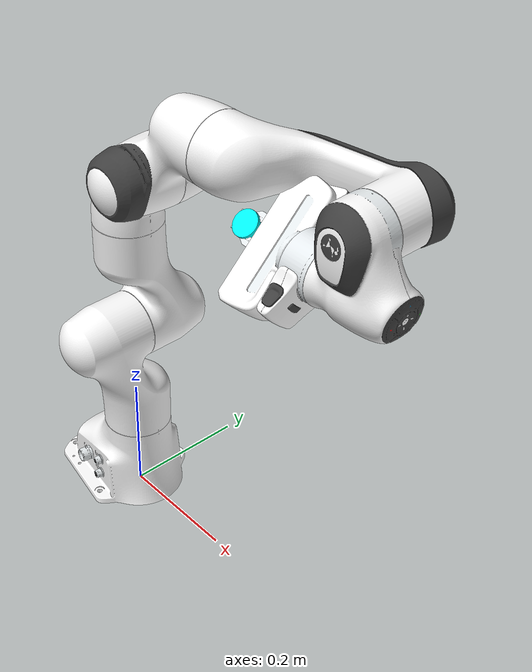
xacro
<?xml version="1.0" encoding="utf-8"?>
<robot xmlns:xacro="http://www.ros.org/wiki/xacro" name="panda">
  <xacro:arg name="robot_name" default="panda"/>

  <!-- Empty link to referr everything to -->
  <link name="world" />

  <!-- Robot arm -->
  <xacro:include filename="$(find franka_description)/robots/panda_arm_others.xacro"/>
  <xacro:include filename="$(find franka_description)/robots/hand.xacro"/>
  <xacro:include filename="$(find franka_description)/robots/panda.gazebo.xacro"/>
  <xacro:include filename="$(find franka_description)/robots/panda.transmission.xacro"/>
  <xacro:include filename="$(find franka_description)/robots/hand_attachment.xacro"/>

  <!-- Robot arm definition-->
  <xacro:panda_arm />
  <!-- Comment or uncomment to add the gripper -->
  <xacro:hand ns="panda" rpy="0 0 ${-pi/4}" connected_to="panda_link8" />
  <xacro:panda_gazebo robot_name="$(arg robot_name)" />
  <xacro:panda_transmission robot_name="$(arg robot_name)" />
  <!-- Attachment -->
  <xacro:stick_urdf parent="virtual_link" />

</robot>

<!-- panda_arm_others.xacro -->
<robot xmlns:xacro="http://www.ros.org/wiki/xacro" name="panda">
  <xacro:macro name="panda_arm" params="arm_id:='panda' description_pkg:='franka_description' connected_to:=''  in_gazebo='false' xyz:='0 0 0' rpy:='0 0 0'">

    <xacro:property name="joint_damping" value="1.0"/>

     <joint name="robot_to_world" type="fixed">
        <parent link="world" />
        <child link="${arm_id}_link0" />
        <origin xyz="0.0 0.0 0.0" rpy="0.0 0.0 0.0" />
        <dynamics damping="${joint_damping}"/>
      </joint>

    <link name="${arm_id}_link0">
      <visual>
        <geometry>
          <mesh filename="package://${description_pkg}/meshes/visual/link0.dae"/>
        </geometry>
      </visual>
      <collision>
        <geometry>
          <mesh filename="package://${description_pkg}/meshes/collision/link0.stl"/>
        </geometry>
      </collision>
      <!--xacro:unless value="${in_gazebo == 'false'}"-->
        <inertial>
          <origin xyz="0 0 0" rpy="0 0 0"/>
          <mass value="3.06"/>
          <inertia ixx="0.3" ixy="0.0" ixz="0.0" iyy="0.3" iyz="0.0" izz="0.3"/>
        </inertial>
      <!--/xacro:unless-->
    </link>

    <link name="${arm_id}_link1">
      <visual>
        <geometry>
          <mesh filename="package://${description_pkg}/meshes/visual/link1.dae"/>
        </geometry>
      </visual>
      <collision>
        <geometry>
          <mesh filename="package://${description_pkg}/meshes/collision/link1.stl"/>
        </geometry>
      </collision>
      <inertial>
        <origin xyz="3.875e-03 2.081e-03 -0.1750" rpy="0 0 0"/>
        <mass value="4.970684"/>
        <inertia ixx="7.0337e-01" ixy="-1.3900e-04" ixz="6.7720e-03" iyy="7.0661e-01" iyz="1.9169e-02" izz="9.1170e-03"/>
      </inertial>
    </link>
    <joint name="${arm_id}_joint1" type="revolute">
      <safety_controller k_position="100.0" k_velocity="40.0" soft_lower_limit="-2.8973" soft_upper_limit="2.8973"/>
      <origin rpy="0 0 0" xyz="0 0 0.333"/>
      <parent link="${arm_id}_link0"/>
      <child link="${arm_id}_link1"/>
      <axis xyz="0 0 1"/>
      <limit effort="87" lower="-2.8973" upper="2.8973" velocity="2.1750"/>
      <!--dynamics damping="10.0" friction="5.0"/-->
    </joint>

    <link name="${arm_id}_link2">
      <visual>
        <geometry>
          <mesh filename="package://${description_pkg}/meshes/visual/link2.dae"/>
        </geometry>
      </visual>
      <collision>
        <geometry>
          <mesh filename="package://${description_pkg}/meshes/collision/link2.stl"/>
        </geometry>
      </collision>
      <inertial>
        <origin xyz="-3.141e-03 -2.872e-02 3.495e-03" rpy="0 0 0"/>
        <mass value="0.646926"/>
        <inertia ixx="7.9620e-03" ixy="-3.9250e-03" ixz="1.0254e-02" iyy="2.8110e-02" iyz="7.0400e-04" izz="2.5995e-02"/>
      </inertial>
    </link>
    <joint name="${arm_id}_joint2" type="revolute">
      <safety_controller k_position="100.0" k_velocity="40.0" soft_lower_limit="-1.7628" soft_upper_limit="1.7628"/>
      <origin rpy="${-pi/2} 0 0" xyz="0 0 0"/>
      <parent link="${arm_id}_link1"/>
      <child link="${arm_id}_link2"/>
      <axis xyz="0 0 1"/>
      <limit effort="87" lower="-1.7628" upper="1.7628" velocity="2.1750"/>
      <!--dynamics damping="5.0" friction="2.0"/-->
    </joint>
    <link name="${arm_id}_link3">
      <visual>
        <geometry>
          <mesh filename="package://${description_pkg}/meshes/visual/link3.dae"/>
        </geometry>
      </visual>
      <collision>
        <geometry>
          <mesh filename="package://${description_pkg}/meshes/collision/link3.stl"/>
        </geometry>
      </collision>
      <inertial>
        <origin xyz="2.7518e-02 3.9252e-02 -6.6502e-02" rpy="0 0 0"/>
        <mass value="3.228604"/>
        <inertia ixx="3.7242e-02" ixy="-4.7610e-03" ixz="-1.1396e-02" iyy="3.6155e-02" iyz="-1.2805e-02" izz="1.0830e-02"/>
      </inertial>
    </link>
    <joint name="${arm_id}_joint3" type="revolute">
      <safety_controller k_position="100.0" k_velocity="40.0" soft_lower_limit="-2.8973" soft_upper_limit="2.8973"/>
      <origin rpy="${pi/2} 0 0" xyz="0 -0.316 0"/>
      <parent link="${arm_id}_link2"/>
      <child link="${arm_id}_link3"/>
      <axis xyz="0 0 1"/>
      <limit effort="87" lower="-2.8973" upper="2.8973" velocity="2.1750"/>
      <!--dynamics damping="5.0" friction="2"/-->
    </joint>
    <link name="${arm_id}_link4">
      <visual>
        <geometry>
          <mesh filename="package://${description_pkg}/meshes/visual/link4.dae"/>
        </geometry>
      </visual>
      <collision>
        <geometry>
          <mesh filename="package://${description_pkg}/meshes/collision/link4.stl"/>
        </geometry>
      </collision>
      <inertial>
        <origin xyz="-5.317e-02 1.04419e-01 2.7454e-02" rpy="0 0 0"/>
        <mass value="3.587895"/>
        <inertia ixx="2.5853e-02" ixy="7.7960e-03" ixz="-1.3320e-03" iyy="1.9552e-02" iyz="8.6410e-03" izz="2.8323e-02"/>
      </inertial>
    </link>
    <joint name="${arm_id}_joint4" type="revolute">
      <safety_controller k_position="100.0" k_velocity="40.0" soft_lower_limit="-3.0718" soft_upper_limit="-0.0698"/>
      <origin rpy="${pi/2} 0 0" xyz="0.0825 0 0"/>
      <parent link="${arm_id}_link3"/>
      <child link="${arm_id}_link4"/>
      <axis xyz="0 0 1"/>
      <limit effort="87" lower="-3.0718" upper="-0.0698" velocity="2.1750"/>
      <!--dynamics damping="1.0" friction="0.5"/-->
    </joint>
    <link name="${arm_id}_link5">
      <visual>
        <geometry>
          <mesh filename="package://${description_pkg}/meshes/visual/link5.dae"/>
        </geometry>
      </visual>
      <collision>
        <geometry>
          <mesh filename="package://${description_pkg}/meshes/collision/link5.stl"/>
        </geometry>
      </collision>
      <inertial>
        <origin xyz="-1.1953e-02 4.1065e-02 -3.8437e-02" rpy="0 0 0"/>
        <mass value="1.225946"/>
        <inertia ixx="3.5549e-02" ixy="-2.1170e-03" ixz="-4.0370e-03" iyy="2.9474e-02" iyz="2.2900e-04" izz="8.6270e-03"/>
      </inertial>
    </link>
    <joint name="${arm_id}_joint5" type="revolute">
      <safety_controller k_position="100.0" k_velocity="40.0" soft_lower_limit="-2.8973" soft_upper_limit="2.8973"/>
      <origin rpy="${-pi/2} 0 0" xyz="-0.0825 0.384 0"/>
      <parent link="${arm_id}_link4"/>
      <child link="${arm_id}_link5"/>
      <axis xyz="0 0 1"/>
      <limit effort="12" lower="-2.8973" upper="2.8973" velocity="2.6100"/>
      <!--dynamics damping="2.0" friction="1.0"/-->
    </joint>
    <link name="${arm_id}_link6">
      <visual>
        <geometry>
          <mesh filename="package://${description_pkg}/meshes/visual/link6.dae"/>
        </geometry>
      </visual>
      <collision>
        <geometry>
          <mesh filename="package://${description_pkg}/meshes/collision/link6.stl"/>
        </geometry>
      </collision>
      <inertial>
        <origin xyz="6.0149e-02 -1.4117e-02 -1.0517e-02" rpy="0 0 0"/>
        <mass value="1.666555"/>
        <inertia ixx="1.9640e-03" ixy="1.0900e-04" ixz="-1.1580e-03" iyy="4.3540e-03" iyz="3.4100e-04" izz="5.4330e-03"/>
      </inertial>
    </link>
    <joint name="${arm_id}_joint6" type="revolute">
      <safety_controller k_position="100.0" k_velocity="40.0" soft_lower_limit="-0.0175" soft_upper_limit="3.7525"/>
      <origin rpy="${pi/2} 0 0" xyz="0 0 0"/>
      <parent link="${arm_id}_link5"/>
      <child link="${arm_id}_link6"/>
      <axis xyz="0 0 1"/>
      <limit effort="12" lower="-0.0175" upper="3.7525" velocity="2.6100"/>
      <!--dynamics damping="1.0" friction="0.5"/-->
    </joint>
    <link name="${arm_id}_link7">
      <visual>
        <geometry>
          <mesh filename="package://${description_pkg}/meshes/visual/link7.dae"/>
        </geometry>
      </visual>
      <collision>
        <geometry>
          <mesh filename="package://${description_pkg}/meshes/collision/link7.stl"/>
        </geometry>
      </collision>
      <inertial>
        <origin xyz="1.0517e-02 -4.252e-03 6.1597e-02" rpy="0 0 0"/>
        <mass value="7.35522e-01"/>
        <inertia ixx="1.2516e-02" ixy="-4.2800e-04" ixz="-1.1960e-03" iyy="1.0027e-02" iyz="-7.4100e-04" izz="4.8150e-03"/>
      </inertial>
    </link>
    <joint name="${arm_id}_joint7" type="revolute">
      <safety_controller k_position="100.0" k_velocity="40.0" soft_lower_limit="-2.8973" soft_upper_limit="2.8973"/>
      <origin rpy="${pi/2} 0 0" xyz="0.088 0 0"/>
      <parent link="${arm_id}_link6"/>
      <child link="${arm_id}_link7"/>
      <axis xyz="0 0 1"/>
      <limit effort="12" lower="-2.8973" upper="2.8973" velocity="2.6100"/>
      <!--dynamics damping="1.0" friction="0.5"/-->
    </joint>
    <link name="${arm_id}_link8">
      <inertial>
        <origin xyz="0 0 0" rpy="0 0 0"/>
        <mass value="0.0"/>
        <inertia ixx="0.001" ixy="0.0" ixz="0.0" iyy="0.001" iyz="0.0" izz="0.001"/>
      </inertial>
    </link>
    <joint name="${arm_id}_joint8" type="fixed">
      <origin rpy="0 0 0" xyz="0 0 0.107"/>
      <parent link="${arm_id}_link7"/>
      <child link="${arm_id}_link8"/>
      <axis xyz="0 0 0"/>
    </joint>
  </xacro:macro>
</robot>

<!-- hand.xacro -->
<robot xmlns:xacro="http://www.ros.org/wiki/xacro" name="hand">
  <xacro:macro name="hand" params="connected_to:='' ns:='' rpy:='0 0 0' xyz:='0 0 0' ">
    <xacro:unless value="${connected_to == ''}">
      <joint name="${ns}_hand_joint" type="fixed">
        <parent link="${connected_to}"/>
        <child link="${ns}_hand"/>
        <origin xyz="${xyz}" rpy="${rpy}"/>
      </joint>
    </xacro:unless>

    <link name="${ns}_hand">
      <visual>
        <geometry>
          <mesh filename="package://franka_description/meshes/visual/hand.dae"/>
        </geometry>
      </visual>
      <collision>
        <geometry>
          <mesh filename="package://franka_description/meshes/collision/hand.stl"/>
        </geometry>
      </collision>
      <inertial>
        <origin xyz="0 0 0" rpy="0 0 0"/>
        <mass value="0.68"/>
        <inertia ixx="0.1" ixy="0.0" ixz="0.0" iyy="0.1" iyz="0.0" izz="0.1"/>
      </inertial>
    </link>
    <link name="${ns}_leftfinger">
      <visual>
        <geometry>
          <mesh filename="package://franka_description/meshes/visual/finger.dae"/>
        </geometry>
      </visual>
      <collision>
        <geometry>
          <mesh filename="package://franka_description/meshes/collision/finger.stl"/>
        </geometry>
      </collision>
      <inertial>
        <origin xyz="0 0 0" rpy="0 0 0"/>
        <mass value="0.001"/>
        <inertia ixx="0.1" ixy="0.0" ixz="0.0" iyy="0.1" iyz="0.0" izz="0.1"/>
      </inertial>
    </link>

    <link name="${ns}_rightfinger">
      <visual>
        <origin xyz="0 0 0" rpy="0 0 ${pi}"/>
        <geometry>
          <mesh filename="package://franka_description/meshes/visual/finger.dae"/>
        </geometry>
      </visual>
      <collision>
        <origin xyz="0 0 0" rpy="0 0 ${pi}"/>
        <geometry>
          <mesh filename="package://franka_description/meshes/collision/finger.stl"/>
        </geometry>
      </collision>
      <inertial>
        <origin xyz="0 0 0" rpy="0 0 0"/>
        <mass value="0.001"/>
        <inertia ixx="0.1" ixy="0.0" ixz="0.0" iyy="0.1" iyz="0.0" izz="0.1"/>
      </inertial>
    </link>
    <joint name="${ns}_finger_joint1" type="prismatic">
      <parent link="${ns}_hand"/>
      <child link="${ns}_leftfinger"/>
      <origin xyz="0 0 0.0584" rpy="0 0 0"/>
      <axis xyz="0 1 0"/>
      <limit effort="20" lower="0.0" upper="0.04" velocity="0.2"/>

    </joint>

    <joint name="${ns}_finger_joint2" type="prismatic">
      <parent link="${ns}_hand"/>
      <child link="${ns}_rightfinger"/>
      <origin xyz="0 0 0.0584" rpy="0 0 0"/>
      <axis xyz="0 -1 0"/>
      <limit effort="20" lower="0.0" upper="0.04" velocity="0.2"/>
    </joint>

    <link name="virtual_link">
      <inertial>
        <origin xyz="0 0 0" rpy="0 0 0"/>
        <mass value="0.0"/>
        <inertia ixx="0.001" ixy="0.0" ixz="0.0" iyy="0.001" iyz="0.0" izz="0.001"/>
      </inertial>
    </link>
    <joint name="virtual_link_joint9" type="fixed">
      <origin rpy="0 0 0" xyz="0 0 0.0584"/>
      <parent link="${ns}_hand"/>
      <child link="virtual_link"/>
      <axis xyz="0 0 0"/>
    </joint>

  </xacro:macro>
</robot>

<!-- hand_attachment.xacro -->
<robot xmlns:xacro="http://www.ros.org/wiki/xacro">

    <!-- Macro for stick -->
    <xacro:macro name="stick_urdf"  params="parent">
        <joint name="stick_joint" type="fixed">
            <origin xyz="0.185 0 0.03" rpy="0 1.57 0"/>
            <parent link="${parent}"/>
            <child link="stick"/>
            <axis xyz="1 0 0"/>
        </joint>

        <link name="stick">
            <visual>
                <origin xyz="0 0 0" rpy="0 0 0" />
                <geometry>
                    <cylinder radius="0.02" length = "0.4"/>
                </geometry>
        	<material name="grey">
          		<color rgba="0 1.0 1.0 1.0"/>
        	</material>
            </visual>
            <collision>
                <origin xyz="0 0 0" rpy="0 0 0" />
                <geometry>
                    <cylinder radius="0.02" length = "0.4"/>
                </geometry>
            </collision>
            <cylinder_inertial_matrix  m="0.01" r="0.01" h="0.5" />
        </link>

    </xacro:macro>

</robot>
